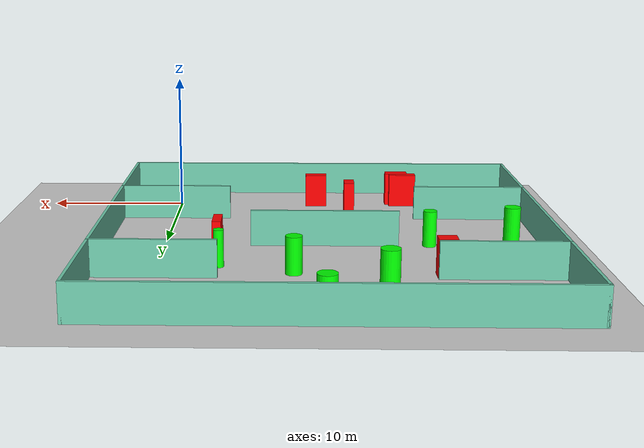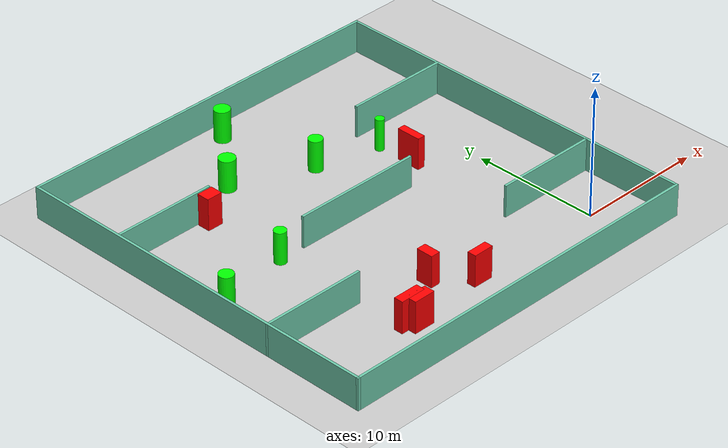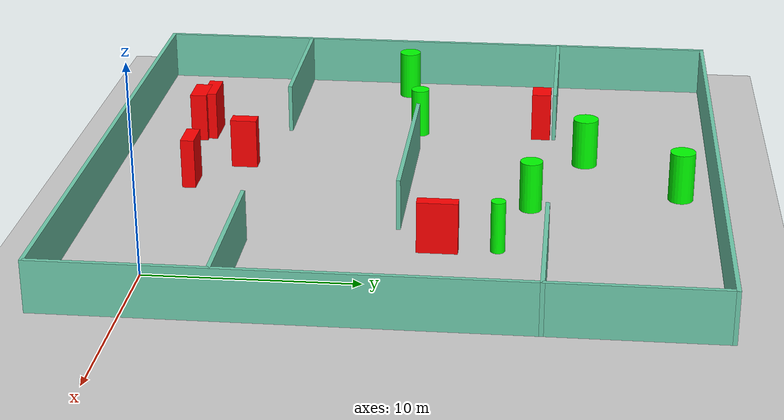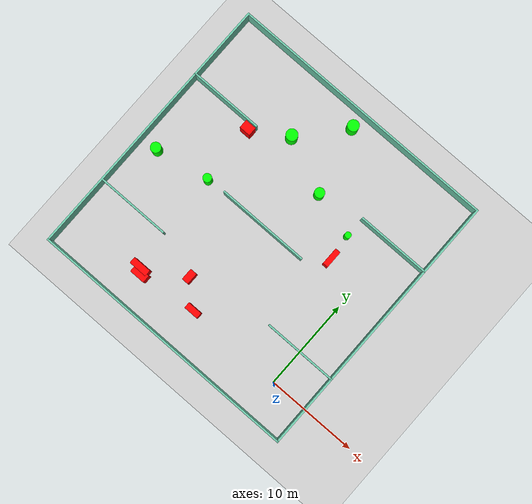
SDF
<sdf version="1.7">
 <world name="default">
  <light name="sun" type="directional">
   <pose>0 0 10 0 -0 0</pose>
   <diffuse>0.8 0.8 0.8 1</diffuse>
   <specular>0.2 0.2 0.2 1</specular>
   <attenuation>
    <range>1000</range>
    <constant>0.9</constant>
    <linear>0.01</linear>
    <quadratic>0.001</quadratic>
   </attenuation>
   <direction>-0.5 0.1 -0.9</direction>
   <spot><inner_angle>0</inner_angle><outer_angle>0</outer_angle><falloff>0</falloff></spot>
  </light>
  <model name="ground_plane">
   <static>1</static>
   <link name="link">
    <collision name="collision">
     <geometry><plane><normal>0 0 1</normal><size>100 100</size></plane></geometry>
     <surface>
      <contact><collide_bitmask>65535</collide_bitmask></contact>
      <friction><ode><mu>100</mu><mu2>50</mu2></ode></friction>
     </surface>
    </collision>
    <visual name="visual">
     <cast_shadows>0</cast_shadows>
     <geometry><plane><normal>0 0 1</normal><size>100 100</size></plane></geometry>
     <material>
      <script><uri>file://media/materials/scripts/gazebo.material</uri><name>Gazebo/Grey</name></script>
     </material>
    </visual>
   </link>
  </model>
  <gravity>0 0 -9.8</gravity>
  <magnetic_field>6e-06 2.3e-05 -4.2e-05</magnetic_field>
  <atmosphere type="adiabatic"/>
  <physics type="ode">
   <max_step_size>0.001</max_step_size>
   <real_time_factor>1</real_time_factor>
   <real_time_update_rate>1000</real_time_update_rate>
  </physics>
  <scene><ambient>0.4 0.4 0.4 1</ambient><background>0.7 0.7 0.7 1</background><shadows>1</shadows></scene>
  <spherical_coordinates>
   <surface_model>EARTH_WGS84</surface_model>
   <latitude_deg>0</latitude_deg>
   <longitude_deg>0</longitude_deg>
   <elevation>0</elevation>
   <heading_deg>0</heading_deg>
  </spherical_coordinates>
  <model name="my_base_walls">
   <link name="Wall_10">
    <collision name="Wall_10_Collision">
     <geometry><box><size>8.2 0.2 2.5</size></box></geometry>
     <pose>0 0 1.25 0 -0 0</pose>
    </collision>
    <visual name="Wall_10_Visual">
     <pose>0 0 1.25 0 -0 0</pose>
     <geometry><box><size>8.2 0.2 2.5</size></box></geometry>
     <material>
      <script><uri>file://media/materials/scripts/gazebo.material</uri><name>Gazebo/Grey</name></script>
      <ambient>0.435294 0.796078 0.67451 1</ambient>
     </material>
     <meta><layer>0</layer></meta>
    </visual>
    <pose>-11 -7 0 0 -0 0</pose>
   </link>
   <link name="Wall_12">
    <collision name="Wall_12_Collision">
     <geometry><box><size>8.2 0.2 2.5</size></box></geometry>
     <pose>0 0 1.25 0 -0 0</pose>
    </collision>
    <visual name="Wall_12_Visual">
     <pose>0 0 1.25 0 -0 0</pose>
     <geometry><box><size>8.2 0.2 2.5</size></box></geometry>
     <material>
      <script><uri>file://media/materials/scripts/gazebo.material</uri><name>Gazebo/Grey</name></script>
      <ambient>0.435294 0.796078 0.67451 1</ambient>
     </material>
     <meta><layer>0</layer></meta>
    </visual>
    <pose>-11 7 0 0 -0 0</pose>
   </link>
   <link name="Wall_14">
    <collision name="Wall_14_Collision">
     <geometry><box><size>8.2 0.2 2.5</size></box></geometry>
     <pose>0 0 1.25 0 -0 0</pose>
    </collision>
    <visual name="Wall_14_Visual">
     <pose>0 0 1.25 0 -0 0</pose>
     <geometry><box><size>8.2 0.2 2.5</size></box></geometry>
     <material>
      <script><uri>file://media/materials/scripts/gazebo.material</uri><name>Gazebo/Grey</name></script>
      <ambient>0.435294 0.796078 0.67451 1</ambient>
     </material>
     <meta><layer>0</layer></meta>
    </visual>
    <pose>11 7 0 0 -0 3.14159</pose>
   </link>
   <link name="Wall_16">
    <collision name="Wall_16_Collision">
     <geometry><box><size>10.2 0.2 2.5</size></box></geometry>
     <pose>0 0 1.25 0 -0 0</pose>
    </collision>
    <visual name="Wall_16_Visual">
     <pose>0 0 1.25 0 -0 0</pose>
     <geometry><box><size>10.2 0.2 2.5</size></box></geometry>
     <material>
      <script><uri>file://media/materials/scripts/gazebo.material</uri><name>Gazebo/Grey</name></script>
      <ambient>0.435294 0.796078 0.67451 1</ambient>
     </material>
     <meta><layer>0</layer></meta>
    </visual>
    <pose>0 0 0 0 -0 3.14159</pose>
   </link>
   <link name="Wall_2">
    <collision name="Wall_2_Collision">
     <geometry><box><size>30.2 0.2 2.5</size></box></geometry>
     <pose>0 0 1.25 0 -0 0</pose>
    </collision>
    <visual name="Wall_2_Visual">
     <pose>0 0 1.25 0 -0 0</pose>
     <geometry><box><size>30.2 0.2 2.5</size></box></geometry>
     <material>
      <script><uri>file://media/materials/scripts/gazebo.material</uri><name>Gazebo/Grey</name></script>
      <ambient>0.435294 0.796078 0.67451 1</ambient>
     </material>
     <meta><layer>0</layer></meta>
    </visual>
    <pose>0 -15 0 0 -0 3.14159</pose>
   </link>
   <link name="Wall_3">
    <collision name="Wall_3_Collision">
     <geometry><box><size>30.2 0.2 2.5</size></box></geometry>
     <pose>0 0 1.25 0 -0 0</pose>
    </collision>
    <visual name="Wall_3_Visual">
     <pose>0 0 1.25 0 -0 0</pose>
     <geometry><box><size>30.2 0.2 2.5</size></box></geometry>
     <material>
      <script><uri>file://media/materials/scripts/gazebo.material</uri><name>Gazebo/Grey</name></script>
      <ambient>0.435294 0.796078 0.67451 1</ambient>
     </material>
     <meta><layer>0</layer></meta>
    </visual>
    <pose>-15 0 0 0 -0 1.5708</pose>
   </link>
   <link name="Wall_4">
    <collision name="Wall_4_Collision">
     <geometry><box><size>30.2 0.2 2.5</size></box></geometry>
     <pose>0 0 1.25 0 -0 0</pose>
    </collision>
    <visual name="Wall_4_Visual">
     <pose>0 0 1.25 0 -0 0</pose>
     <geometry><box><size>30.2 0.2 2.5</size></box></geometry>
     <material>
      <script><uri>file://media/materials/scripts/gazebo.material</uri><name>Gazebo/Grey</name></script>
      <ambient>0.435294 0.796078 0.67451 1</ambient>
     </material>
     <meta><layer>0</layer></meta>
    </visual>
    <pose>0 15 0 0 -0 0</pose>
   </link>
   <link name="Wall_6">
    <collision name="Wall_6_Collision">
     <geometry><box><size>30.2 0.2 2.5</size></box></geometry>
     <pose>0 0 1.25 0 -0 0</pose>
    </collision>
    <visual name="Wall_6_Visual">
     <pose>0 0 1.25 0 -0 0</pose>
     <geometry><box><size>30.2 0.2 2.5</size></box></geometry>
     <material>
      <script><uri>file://media/materials/scripts/gazebo.material</uri><name>Gazebo/Grey</name></script>
      <ambient>0.435294 0.796078 0.67451 1</ambient>
     </material>
     <meta><layer>0</layer></meta>
    </visual>
    <pose>15 0 0 0 -0 1.5708</pose>
   </link>
   <link name="Wall_8">
    <collision name="Wall_8_Collision">
     <geometry><box><size>8.2 0.2 2.5</size></box></geometry>
     <pose>0 0 1.25 0 -0 0</pose>
    </collision>
    <visual name="Wall_8_Visual">
     <pose>0 0 1.25 0 -0 0</pose>
     <geometry><box><size>8.2 0.2 2.5</size></box></geometry>
     <material>
      <script><uri>file://media/materials/scripts/gazebo.material</uri><name>Gazebo/Grey</name></script>
      <ambient>0.435294 0.796078 0.67451 1</ambient>
     </material>
     <meta><layer>0</layer></meta>
    </visual>
    <pose>11 -7 0 0 -0 3.14159</pose>
   </link>
   <static>1</static>
   <pose>-11 11 0 0 -0 0</pose>
  </model>
  <model name="cylinder1">
   <static>1</static>
   <link name="link">
    <inertial>
     <mass>1</mass>
     <inertia><ixx>0.5</ixx><ixy>0</ixy><ixz>0</ixz><iyy>0.5</iyy><iyz>0</iyz><izz>1</izz></inertia>
    </inertial>
    <collision name="collision">
     <geometry><cylinder><radius>0.4689862807009395</radius><length>2.5</length></cylinder></geometry>
    </collision>
    <visual name="visual">
     <geometry><cylinder><radius>0.4689862807009395</radius><length>2.5</length></cylinder></geometry>
     <material>
      <ambient>0 1 0 1</ambient>
      <diffuse>0 1 0 1</diffuse>
      <specular>0.1 0.1 0.1 1</specular>
      <emissive>0 0 0 0</emissive>
     </material>
    </visual>
   </link>
   <pose>-18.22058881217071 10.912783600987142 1.25 0 0 0</pose>
  </model>
  <model name="cylinder2">
   <static>1</static>
   <link name="link">
    <inertial>
     <mass>1</mass>
     <inertia><ixx>0.5</ixx><ixy>0</ixy><ixz>0</ixz><iyy>0.5</iyy><iyz>0</iyz><izz>1</izz></inertia>
    </inertial>
    <collision name="collision">
     <geometry><cylinder><radius>0.34136695195286443</radius><length>2.5</length></cylinder></geometry>
    </collision>
    <visual name="visual">
     <geometry><cylinder><radius>0.34136695195286443</radius><length>2.5</length></cylinder></geometry>
     <material>
      <ambient>0 1 0 1</ambient>
      <diffuse>0 1 0 1</diffuse>
      <specular>0.1 0.1 0.1 1</specular>
      <emissive>0 0 0 0</emissive>
     </material>
    </visual>
   </link>
   <pose>-4.022620292621568 15.772769688250303 1.25 0 0 0</pose>
  </model>
  <model name="cylinder3">
   <static>1</static>
   <link name="link">
    <inertial>
     <mass>1</mass>
     <inertia><ixx>0.5</ixx><ixy>0</ixy><ixz>0</ixz><iyy>0.5</iyy><iyz>0</iyz><izz>1</izz></inertia>
    </inertial>
    <collision name="collision">
     <geometry><cylinder><radius>0.5425738074536981</radius><length>2.5</length></cylinder></geometry>
    </collision>
    <visual name="visual">
     <geometry><cylinder><radius>0.5425738074536981</radius><length>2.5</length></cylinder></geometry>
     <material>
      <ambient>0 1 0 1</ambient>
      <diffuse>0 1 0 1</diffuse>
      <specular>0.1 0.1 0.1 1</specular>
      <emissive>0 0 0 0</emissive>
     </material>
    </visual>
   </link>
   <pose>-8.879724784100418 17.104565499478973 1.25 0 0 0</pose>
  </model>
  <model name="cylinder4">
   <static>1</static>
   <link name="link">
    <inertial>
     <mass>1</mass>
     <inertia><ixx>0.5</ixx><ixy>0</ixy><ixz>0</ixz><iyy>0.5</iyy><iyz>0</iyz><izz>1</izz></inertia>
    </inertial>
    <collision name="collision">
     <geometry><cylinder><radius>0.5618230473595439</radius><length>2.5</length></cylinder></geometry>
    </collision>
    <visual name="visual">
     <geometry><cylinder><radius>0.5618230473595439</radius><length>2.5</length></cylinder></geometry>
     <material>
      <ambient>0 1 0 1</ambient>
      <diffuse>0 1 0 1</diffuse>
      <specular>0.1 0.1 0.1 1</specular>
      <emissive>0 0 0 0</emissive>
     </material>
    </visual>
   </link>
   <pose>-24.07159670197876 9.825386471162144 1.25 0 0 0</pose>
  </model>
  <model name="cylinder5">
   <static>1</static>
   <link name="link">
    <inertial>
     <mass>1</mass>
     <inertia><ixx>0.5</ixx><ixy>0</ixy><ixz>0</ixz><iyy>0.5</iyy><iyz>0</iyz><izz>1</izz></inertia>
    </inertial>
    <collision name="collision">
     <geometry><cylinder><radius>0.6194992364809053</radius><length>2.5</length></cylinder></geometry>
    </collision>
    <visual name="visual">
     <geometry><cylinder><radius>0.6194992364809053</radius><length>2.5</length></cylinder></geometry>
     <material>
      <ambient>0 1 0 1</ambient>
      <diffuse>0 1 0 1</diffuse>
      <specular>0.1 0.1 0.1 1</specular>
      <emissive>0 0 0 0</emissive>
     </material>
    </visual>
   </link>
   <pose>-10.750829278885158 24.366069085652764 1.25 0 0 0</pose>
  </model>
  <model name="cylinder6">
   <static>1</static>
   <link name="link">
    <inertial>
     <mass>1</mass>
     <inertia><ixx>0.5</ixx><ixy>0</ixy><ixz>0</ixz><iyy>0.5</iyy><iyz>0</iyz><izz>1</izz></inertia>
    </inertial>
    <collision name="collision">
     <geometry><cylinder><radius>0.6343271312749594</radius><length>2.5</length></cylinder></geometry>
    </collision>
    <visual name="visual">
     <geometry><cylinder><radius>0.6343271312749594</radius><length>2.5</length></cylinder></geometry>
     <material>
      <ambient>0 1 0 1</ambient>
      <diffuse>0 1 0 1</diffuse>
      <specular>0.1 0.1 0.1 1</specular>
      <emissive>0 0 0 0</emissive>
     </material>
    </visual>
   </link>
   <pose>-14.728869371200279 19.649023406674353 1.25 0 0 0</pose>
  </model>
  <model name="box1">
   <static>1</static>
   <link name="link">
    <inertial>
     <mass>1</mass>
     <inertia><ixx>0.083</ixx><ixy>0</ixy><ixz>0</ixz><iyy>0.083</iyy><iyz>0</iyz><izz>0.083</izz></inertia>
    </inertial>
    <collision name="collision">
     <geometry><box><size>0.6070864395337884 1.9201522673431808 2.5</size></box></geometry>
    </collision>
    <visual name="visual">
     <geometry><box><size>0.6070864395337884 1.9201522673431808 2.5</size></box></geometry>
     <material>
      <ambient>1 0 0 1</ambient>
      <diffuse>1 0 0 1</diffuse>
      <specular>0.1 0.1 0.1 1</specular>
      <emissive>0 0 0 0</emissive>
     </material>
    </visual>
    <sensor name="my_contact" type="contact">
     <contact><collision>box_collision</collision><topic>__default_topic__</topic></contact>
    </sensor>
   </link>
   <pose>-3.7630319122407165 13.017502970933482 1.25 0 0 0</pose>
  </model>
  <model name="box2">
   <static>1</static>
   <link name="link">
    <inertial>
     <mass>1</mass>
     <inertia><ixx>0.083</ixx><ixy>0</ixy><ixz>0</ixz><iyy>0.083</iyy><iyz>0</iyz><izz>0.083</izz></inertia>
    </inertial>
    <collision name="collision">
     <geometry><box><size>2.0173024957161285 0.7100438191596294 2.5</size></box></geometry>
    </collision>
    <visual name="visual">
     <geometry><box><size>2.0173024957161285 0.7100438191596294 2.5</size></box></geometry>
     <material>
      <ambient>1 0 0 1</ambient>
      <diffuse>1 0 0 1</diffuse>
      <specular>0.1 0.1 0.1 1</specular>
      <emissive>0 0 0 0</emissive>
     </material>
    </visual>
    <sensor name="my_contact" type="contact">
     <contact><collision>box_collision</collision><topic>__default_topic__</topic></contact>
    </sensor>
   </link>
   <pose>-17.411335560471407 -0.04965793965266885 1.25 0 0 0</pose>
  </model>
  <model name="box3">
   <static>1</static>
   <link name="link">
    <inertial>
     <mass>1</mass>
     <inertia><ixx>0.083</ixx><ixy>0</ixy><ixz>0</ixz><iyy>0.083</iyy><iyz>0</iyz><izz>0.083</izz></inertia>
    </inertial>
    <collision name="collision">
     <geometry><box><size>1.242893333101664 0.9747001415420979 2.5</size></box></geometry>
    </collision>
    <visual name="visual">
     <geometry><box><size>1.242893333101664 0.9747001415420979 2.5</size></box></geometry>
     <material>
      <ambient>1 0 0 1</ambient>
      <diffuse>1 0 0 1</diffuse>
      <specular>0.1 0.1 0.1 1</specular>
      <emissive>0 0 0 0</emissive>
     </material>
    </visual>
    <sensor name="my_contact" type="contact">
     <contact><collision>box_collision</collision><topic>__default_topic__</topic></contact>
    </sensor>
   </link>
   <pose>-18.502217034312174 17.31455883252743 1.25 0 0 0</pose>
  </model>
  <model name="box4">
   <static>1</static>
   <link name="link">
    <inertial>
     <mass>1</mass>
     <inertia><ixx>0.083</ixx><ixy>0</ixy><ixz>0</ixz><iyy>0.083</iyy><iyz>0</iyz><izz>0.083</izz></inertia>
    </inertial>
    <collision name="collision">
     <geometry><box><size>0.7525240053944751 1.311765830294149 2.5</size></box></geometry>
    </collision>
    <visual name="visual">
     <geometry><box><size>0.7525240053944751 1.311765830294149 2.5</size></box></geometry>
     <material>
      <ambient>1 0 0 1</ambient>
      <diffuse>1 0 0 1</diffuse>
      <specular>0.1 0.1 0.1 1</specular>
      <emissive>0 0 0 0</emissive>
     </material>
    </visual>
    <sensor name="my_contact" type="contact">
     <contact><collision>box_collision</collision><topic>__default_topic__</topic></contact>
    </sensor>
   </link>
   <pose>-13.109008366682744 2.421762941793771 1.25 0 0 0</pose>
  </model>
  <model name="box5">
   <static>1</static>
   <link name="link">
    <inertial>
     <mass>1</mass>
     <inertia><ixx>0.083</ixx><ixy>0</ixy><ixz>0</ixz><iyy>0.083</iyy><iyz>0</iyz><izz>0.083</izz></inertia>
    </inertial>
    <collision name="collision">
     <geometry><box><size>1.6982209821968275 0.8463995048228687 2.5</size></box></geometry>
    </collision>
    <visual name="visual">
     <geometry><box><size>1.6982209821968275 0.8463995048228687 2.5</size></box></geometry>
     <material>
      <ambient>1 0 0 1</ambient>
      <diffuse>1 0 0 1</diffuse>
      <specular>0.1 0.1 0.1 1</specular>
      <emissive>0 0 0 0</emissive>
     </material>
    </visual>
    <sensor name="my_contact" type="contact">
     <contact><collision>box_collision</collision><topic>__default_topic__</topic></contact>
    </sensor>
   </link>
   <pose>-16.978090186501788 -0.5790768253189551 1.25 0 0 0</pose>
  </model>
  <model name="box6">
   <static>1</static>
   <link name="link">
    <inertial>
     <mass>1</mass>
     <inertia><ixx>0.083</ixx><ixy>0</ixy><ixz>0</ixz><iyy>0.083</iyy><iyz>0</iyz><izz>0.083</izz></inertia>
    </inertial>
    <collision name="collision">
     <geometry><box><size>1.6065895787350095 0.6714372445021692 2.5</size></box></geometry>
    </collision>
    <visual name="visual">
     <geometry><box><size>1.6065895787350095 0.6714372445021692 2.5</size></box></geometry>
     <material>
      <ambient>1 0 0 1</ambient>
      <diffuse>1 0 0 1</diffuse>
      <specular>0.1 0.1 0.1 1</specular>
      <emissive>0 0 0 0</emissive>
     </material>
    </visual>
    <sensor name="my_contact" type="contact">
     <contact><collision>box_collision</collision><topic>__default_topic__</topic></contact>
    </sensor>
   </link>
   <pose>-10.641594798599918 0.15059518809575456 1.25 0 0 0</pose>
  </model>
 </world>
</sdf>
